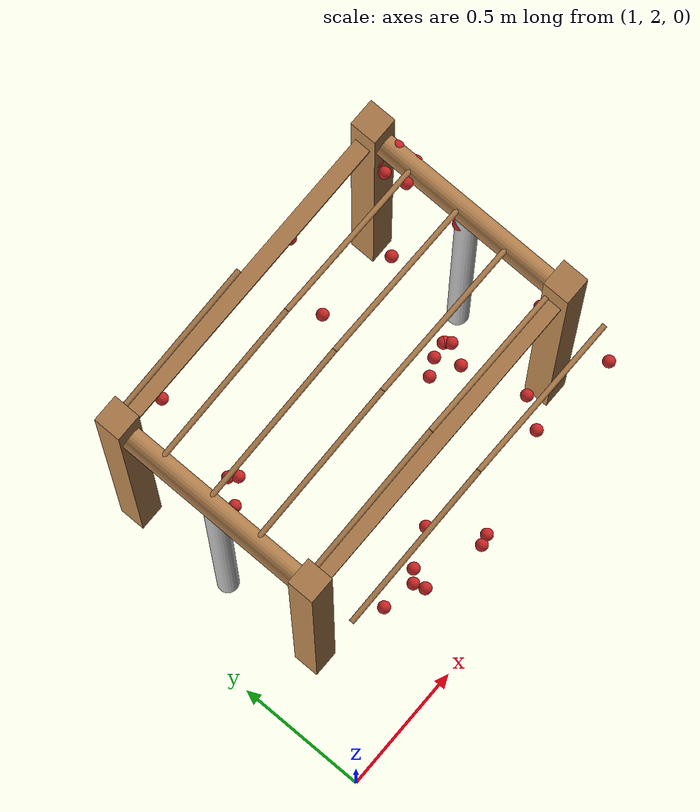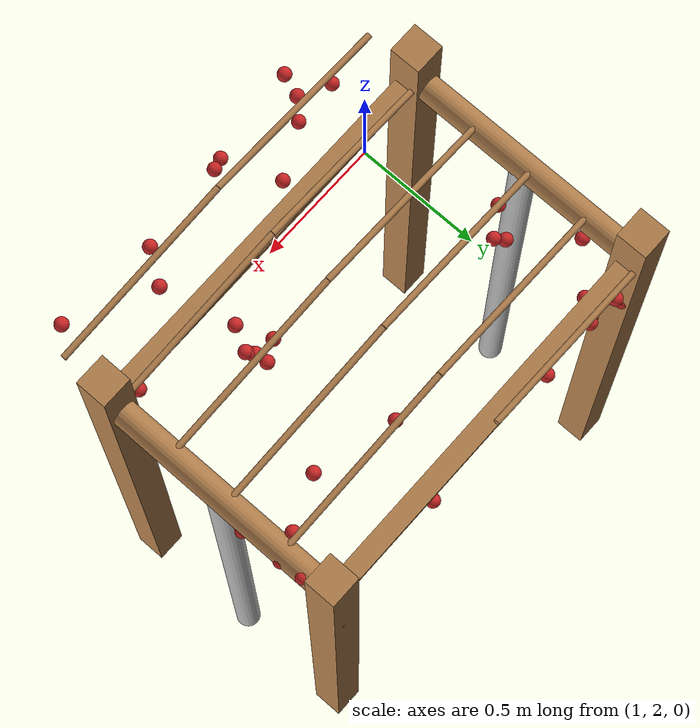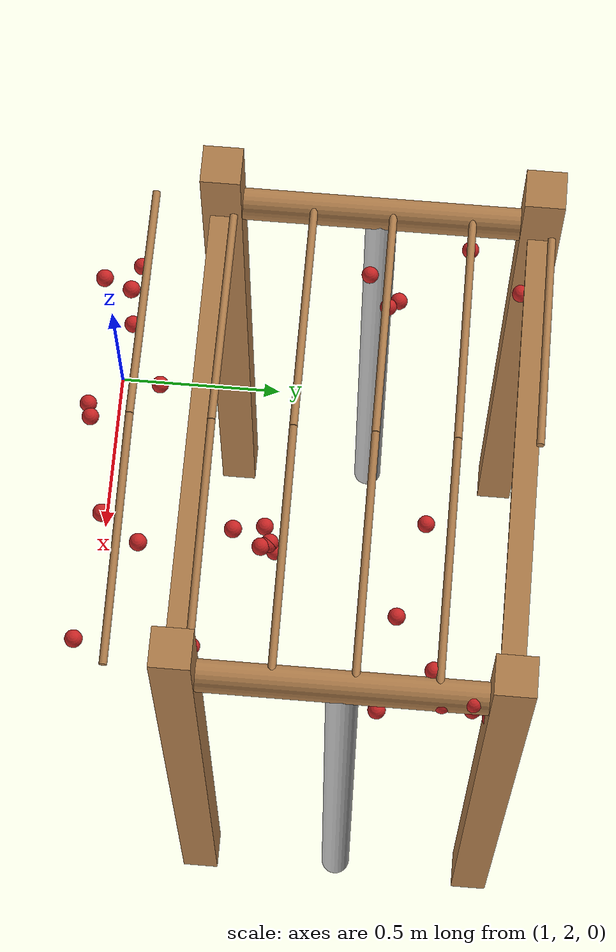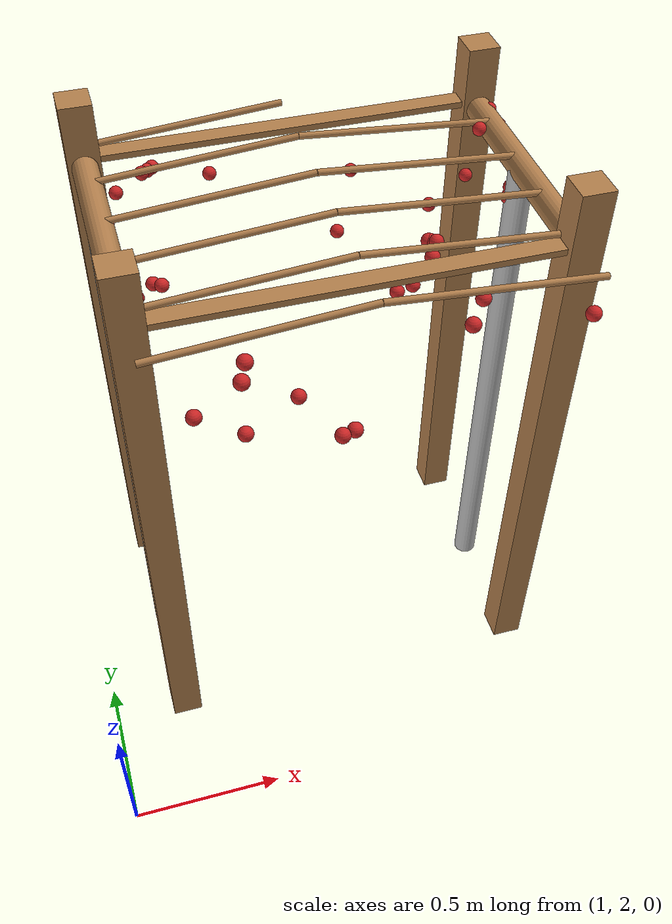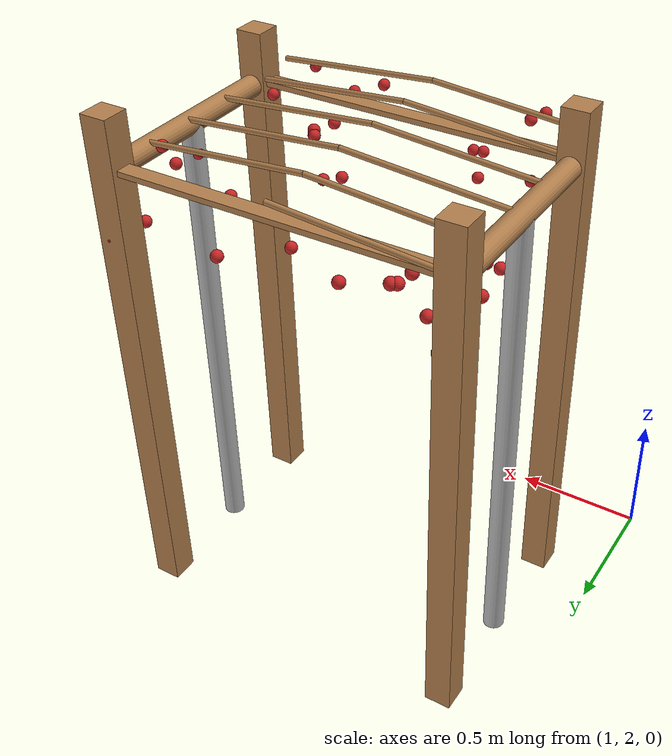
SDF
<sdf version="1.4">
 <model name="pergola">
  <include><name>post_10</name><pose>1.25 2.4000000000000004 0 0 0 0</pose><uri>model://post</uri></include>
  <include><name>post_11</name><pose>1.25 3.2 0 0 0 0</pose><uri>model://post</uri></include>
  <include><name>post_17</name><pose>2.5 2.4000000000000004 0 0 0 0</pose><uri>model://post</uri></include>
  <include><name>post_18</name><pose>2.5 3.2 0 0 0 0</pose><uri>model://post</uri></include>
  <link name="beam_10">
   <pose>1.875 2.4000000000000004 1.81 0 0 0</pose>
   <collision name="collision"><geometry><box><size>1.25 0.06 0.02</size></box></geometry></collision>
   <visual name="visual">
    <geometry><box><size>1.25 0.06 0.02</size></box></geometry>
    <material><script><name>Gazebo/Wood</name></script></material>
   </visual>
   <inertial>
    <mass>5</mass>
    <inertia>
     <ixx>0.0016666666666666668</ixx>
     <ixy>0.0</ixy>
     <ixz>0.0</ixz>
     <iyy>0.6525416666666667</iyy>
     <iyz>0.0</iyz>
     <izz>0.6512083333333333</izz>
    </inertia>
   </inertial>
  </link>
  <link name="beam_11">
   <pose>1.875 3.2 1.81 0 0 0</pose>
   <collision name="collision"><geometry><box><size>1.25 0.06 0.02</size></box></geometry></collision>
   <visual name="visual">
    <geometry><box><size>1.25 0.06 0.02</size></box></geometry>
    <material><script><name>Gazebo/Wood</name></script></material>
   </visual>
   <inertial>
    <mass>5</mass>
    <inertia>
     <ixx>0.0016666666666666668</ixx>
     <ixy>0.0</ixy>
     <ixz>0.0</ixz>
     <iyy>0.6525416666666667</iyy>
     <iyz>0.0</iyz>
     <izz>0.6512083333333333</izz>
    </inertia>
   </inertial>
  </link>
  <include>
   <name>tree_9</name>
   <pose>1.25 2.8000000000000003 0 0 0 0</pose>
   <uri>model://tree_trunk</uri>
  </include>
  <include>
   <name>tree_15</name>
   <pose>2.5 2.8000000000000003 0 0 0 0</pose>
   <uri>model://tree_trunk</uri>
  </include>
  <link name="baseBranch_9">
   <pose>1.25 2.8000000000000003 1.8 1.5707963267948966 0 0</pose>
   <collision name="collision">
    <geometry><cylinder><radius>0.04</radius><length>0.74</length></cylinder></geometry>
   </collision>
   <visual name="visual">
    <geometry><cylinder><radius>0.04</radius><length>0.74</length></cylinder></geometry>
    <material><script><name>Gazebo/WoodFloor</name></script></material>
   </visual>
   <inertial>
    <mass>10</mass>
    <inertia>
     <ixx>0.4603333333333333</ixx>
     <ixy>0.0</ixy>
     <ixz>0.0</ixz>
     <iyy>0.4603333333333333</iyy>
     <iyz>0.0</iyz>
     <izz>0.008</izz>
    </inertia>
   </inertial>
  </link>
  <link name="baseBranch_15">
   <pose>2.5 2.8000000000000003 1.8 1.5707963267948966 0 0</pose>
   <collision name="collision">
    <geometry><cylinder><radius>0.04</radius><length>0.74</length></cylinder></geometry>
   </collision>
   <visual name="visual">
    <geometry><cylinder><radius>0.04</radius><length>0.74</length></cylinder></geometry>
    <material><script><name>Gazebo/WoodFloor</name></script></material>
   </visual>
   <inertial>
    <mass>10</mass>
    <inertia>
     <ixx>0.4603333333333333</ixx>
     <ixy>0.0</ixy>
     <ixz>0.0</ixz>
     <iyy>0.4603333333333333</iyy>
     <iyz>0.0</iyz>
     <izz>0.008</izz>
    </inertia>
   </inertial>
  </link>
  <link name="vine_70">
   <pose>1.5625 2.23 1.85 0 1.4909663410826592 0</pose>
   <collision name="collision">
    <geometry><cylinder><radius>0.01</radius><length>0.6269968101992226</length></cylinder></geometry>
   </collision>
   <visual name="visual">
    <geometry><cylinder><radius>0.01</radius><length>0.6269968101992226</length></cylinder></geometry>
    <material><script><name>Gazebo/WoodFloor</name></script></material>
   </visual>
   <inertial>
    <mass>5</mass>
    <inertia>
     <ixx>0.1639270833333333</ixx>
     <ixy>0.0</ixy>
     <ixz>0.0</ixz>
     <iyy>0.1639270833333333</iyy>
     <iyz>0.0</iyz>
     <izz>0.00025</izz>
    </inertia>
   </inertial>
  </link>
  <link name="vine_71">
   <pose>2.1875 2.23 1.85 0 -1.4909663410826592 0</pose>
   <collision name="collision">
    <geometry><cylinder><radius>0.01</radius><length>0.6269968101992226</length></cylinder></geometry>
   </collision>
   <visual name="visual">
    <geometry><cylinder><radius>0.01</radius><length>0.6269968101992226</length></cylinder></geometry>
    <material><script><name>Gazebo/WoodFloor</name></script></material>
   </visual>
   <inertial>
    <mass>5</mass>
    <inertia>
     <ixx>0.1639270833333333</ixx>
     <ixy>0.0</ixy>
     <ixz>0.0</ixz>
     <iyy>0.1639270833333333</iyy>
     <iyz>0.0</iyz>
     <izz>0.00025</izz>
    </inertia>
   </inertial>
  </link>
  <link name="vine_72">
   <pose>1.5625 2.43 1.85 0 1.4909663410826592 0</pose>
   <collision name="collision">
    <geometry><cylinder><radius>0.01</radius><length>0.6269968101992226</length></cylinder></geometry>
   </collision>
   <visual name="visual">
    <geometry><cylinder><radius>0.01</radius><length>0.6269968101992226</length></cylinder></geometry>
    <material><script><name>Gazebo/WoodFloor</name></script></material>
   </visual>
   <inertial>
    <mass>5</mass>
    <inertia>
     <ixx>0.1639270833333333</ixx>
     <ixy>0.0</ixy>
     <ixz>0.0</ixz>
     <iyy>0.1639270833333333</iyy>
     <iyz>0.0</iyz>
     <izz>0.00025</izz>
    </inertia>
   </inertial>
  </link>
  <link name="vine_73">
   <pose>2.1875 2.43 1.85 0 -1.4909663410826592 0</pose>
   <collision name="collision">
    <geometry><cylinder><radius>0.01</radius><length>0.6269968101992226</length></cylinder></geometry>
   </collision>
   <visual name="visual">
    <geometry><cylinder><radius>0.01</radius><length>0.6269968101992226</length></cylinder></geometry>
    <material><script><name>Gazebo/WoodFloor</name></script></material>
   </visual>
   <inertial>
    <mass>5</mass>
    <inertia>
     <ixx>0.1639270833333333</ixx>
     <ixy>0.0</ixy>
     <ixz>0.0</ixz>
     <iyy>0.1639270833333333</iyy>
     <iyz>0.0</iyz>
     <izz>0.00025</izz>
    </inertia>
   </inertial>
  </link>
  <link name="vine_74">
   <pose>1.5625 2.63 1.85 0 1.4909663410826592 0</pose>
   <collision name="collision">
    <geometry><cylinder><radius>0.01</radius><length>0.6269968101992226</length></cylinder></geometry>
   </collision>
   <visual name="visual">
    <geometry><cylinder><radius>0.01</radius><length>0.6269968101992226</length></cylinder></geometry>
    <material><script><name>Gazebo/WoodFloor</name></script></material>
   </visual>
   <inertial>
    <mass>5</mass>
    <inertia>
     <ixx>0.1639270833333333</ixx>
     <ixy>0.0</ixy>
     <ixz>0.0</ixz>
     <iyy>0.1639270833333333</iyy>
     <iyz>0.0</iyz>
     <izz>0.00025</izz>
    </inertia>
   </inertial>
  </link>
  <link name="vine_75">
   <pose>2.1875 2.63 1.85 0 -1.4909663410826592 0</pose>
   <collision name="collision">
    <geometry><cylinder><radius>0.01</radius><length>0.6269968101992226</length></cylinder></geometry>
   </collision>
   <visual name="visual">
    <geometry><cylinder><radius>0.01</radius><length>0.6269968101992226</length></cylinder></geometry>
    <material><script><name>Gazebo/WoodFloor</name></script></material>
   </visual>
   <inertial>
    <mass>5</mass>
    <inertia>
     <ixx>0.1639270833333333</ixx>
     <ixy>0.0</ixy>
     <ixz>0.0</ixz>
     <iyy>0.1639270833333333</iyy>
     <iyz>0.0</iyz>
     <izz>0.00025</izz>
    </inertia>
   </inertial>
  </link>
  <link name="vine_76">
   <pose>1.5625 2.83 1.85 0 1.4909663410826592 0</pose>
   <collision name="collision">
    <geometry><cylinder><radius>0.01</radius><length>0.6269968101992226</length></cylinder></geometry>
   </collision>
   <visual name="visual">
    <geometry><cylinder><radius>0.01</radius><length>0.6269968101992226</length></cylinder></geometry>
    <material><script><name>Gazebo/WoodFloor</name></script></material>
   </visual>
   <inertial>
    <mass>5</mass>
    <inertia>
     <ixx>0.1639270833333333</ixx>
     <ixy>0.0</ixy>
     <ixz>0.0</ixz>
     <iyy>0.1639270833333333</iyy>
     <iyz>0.0</iyz>
     <izz>0.00025</izz>
    </inertia>
   </inertial>
  </link>
  <link name="vine_77">
   <pose>2.1875 2.83 1.85 0 -1.4909663410826592 0</pose>
   <collision name="collision">
    <geometry><cylinder><radius>0.01</radius><length>0.6269968101992226</length></cylinder></geometry>
   </collision>
   <visual name="visual">
    <geometry><cylinder><radius>0.01</radius><length>0.6269968101992226</length></cylinder></geometry>
    <material><script><name>Gazebo/WoodFloor</name></script></material>
   </visual>
   <inertial>
    <mass>5</mass>
    <inertia>
     <ixx>0.1639270833333333</ixx>
     <ixy>0.0</ixy>
     <ixz>0.0</ixz>
     <iyy>0.1639270833333333</iyy>
     <iyz>0.0</iyz>
     <izz>0.00025</izz>
    </inertia>
   </inertial>
  </link>
  <link name="vine_78">
   <pose>1.5625 3.03 1.85 0 1.4909663410826592 0</pose>
   <collision name="collision">
    <geometry><cylinder><radius>0.01</radius><length>0.6269968101992226</length></cylinder></geometry>
   </collision>
   <visual name="visual">
    <geometry><cylinder><radius>0.01</radius><length>0.6269968101992226</length></cylinder></geometry>
    <material><script><name>Gazebo/WoodFloor</name></script></material>
   </visual>
   <inertial>
    <mass>5</mass>
    <inertia>
     <ixx>0.1639270833333333</ixx>
     <ixy>0.0</ixy>
     <ixz>0.0</ixz>
     <iyy>0.1639270833333333</iyy>
     <iyz>0.0</iyz>
     <izz>0.00025</izz>
    </inertia>
   </inertial>
  </link>
  <link name="vine_79">
   <pose>2.1875 3.03 1.85 0 -1.4909663410826592 0</pose>
   <collision name="collision">
    <geometry><cylinder><radius>0.01</radius><length>0.6269968101992226</length></cylinder></geometry>
   </collision>
   <visual name="visual">
    <geometry><cylinder><radius>0.01</radius><length>0.6269968101992226</length></cylinder></geometry>
    <material><script><name>Gazebo/WoodFloor</name></script></material>
   </visual>
   <inertial>
    <mass>5</mass>
    <inertia>
     <ixx>0.1639270833333333</ixx>
     <ixy>0.0</ixy>
     <ixz>0.0</ixz>
     <iyy>0.1639270833333333</iyy>
     <iyz>0.0</iyz>
     <izz>0.00025</izz>
    </inertia>
   </inertial>
  </link>
  <link name="vine_80">
   <pose>1.5625 3.23 1.85 0 1.4909663410826592 0</pose>
   <collision name="collision">
    <geometry><cylinder><radius>0.01</radius><length>0.6269968101992226</length></cylinder></geometry>
   </collision>
   <visual name="visual">
    <geometry><cylinder><radius>0.01</radius><length>0.6269968101992226</length></cylinder></geometry>
    <material><script><name>Gazebo/WoodFloor</name></script></material>
   </visual>
   <inertial>
    <mass>5</mass>
    <inertia>
     <ixx>0.1639270833333333</ixx>
     <ixy>0.0</ixy>
     <ixz>0.0</ixz>
     <iyy>0.1639270833333333</iyy>
     <iyz>0.0</iyz>
     <izz>0.00025</izz>
    </inertia>
   </inertial>
  </link>
  <link name="fruit_1">
   <pose>2.4274751478928813 2.1480579953781347 1.7793262980542583 0 0 0</pose>
   <collision name="fruit_collision_1"><geometry><sphere><radius>0.022</radius></sphere></geometry></collision>
   <visual name="visual">
    <geometry><sphere><radius>0.022</radius></sphere></geometry>
    <material><script><name>Gazebo/Red</name></script></material>
   </visual>
   <inertial>
    <mass>0.05</mass>
    <inertia>
     <ixx>9.679999999999999e-06</ixx>
     <ixy>0.0</ixy>
     <ixz>0.0</ixz>
     <iyy>9.679999999999999e-06</iyy>
     <iyz>0.0</iyz>
     <izz>9.679999999999999e-06</izz>
    </inertia>
   </inertial>
   <sensor name="fruit_contact_1" type="contact">
    <plugin name="contact_plugin_1" filename="libcontact_plugin.so"/>
    <contact><collision>fruit_collision_1</collision><topic>fruit_contact_topic_1</topic></contact>
   </sensor>
  </link>
  <link name="fruit_43">
   <pose>1.4993064853618758 2.1803682956293535 1.5610665140490019 0 0 0</pose>
   <collision name="fruit_collision_43"><geometry><sphere><radius>0.022</radius></sphere></geometry></collision>
   <visual name="visual">
    <geometry><sphere><radius>0.022</radius></sphere></geometry>
    <material><script><name>Gazebo/Red</name></script></material>
   </visual>
   <inertial>
    <mass>0.05</mass>
    <inertia>
     <ixx>9.679999999999999e-06</ixx>
     <ixy>0.0</ixy>
     <ixz>0.0</ixz>
     <iyy>9.679999999999999e-06</iyy>
     <iyz>0.0</iyz>
     <izz>9.679999999999999e-06</izz>
    </inertia>
   </inertial>
   <sensor name="fruit_contact_43" type="contact">
    <plugin name="contact_plugin_43" filename="libcontact_plugin.so"/>
    <contact><collision>fruit_collision_43</collision><topic>fruit_contact_topic_43</topic></contact>
   </sensor>
  </link>
  <link name="fruit_58">
   <pose>2.473344468427292 2.8125301566092666 1.6951226149741345 0 0 0</pose>
   <collision name="fruit_collision_58"><geometry><sphere><radius>0.022</radius></sphere></geometry></collision>
   <visual name="visual">
    <geometry><sphere><radius>0.022</radius></sphere></geometry>
    <material><script><name>Gazebo/Red</name></script></material>
   </visual>
   <inertial>
    <mass>0.05</mass>
    <inertia>
     <ixx>9.679999999999999e-06</ixx>
     <ixy>0.0</ixy>
     <ixz>0.0</ixz>
     <iyy>9.679999999999999e-06</iyy>
     <iyz>0.0</iyz>
     <izz>9.679999999999999e-06</izz>
    </inertia>
   </inertial>
   <sensor name="fruit_contact_58" type="contact">
    <plugin name="contact_plugin_58" filename="libcontact_plugin.so"/>
    <contact><collision>fruit_collision_58</collision><topic>fruit_contact_topic_58</topic></contact>
   </sensor>
  </link>
  <link name="fruit_66">
   <pose>2.4471947535418987 3.013175742300873 1.8152338183604946 0 0 0</pose>
   <collision name="fruit_collision_66"><geometry><sphere><radius>0.022</radius></sphere></geometry></collision>
   <visual name="visual">
    <geometry><sphere><radius>0.022</radius></sphere></geometry>
    <material><script><name>Gazebo/Red</name></script></material>
   </visual>
   <inertial>
    <mass>0.05</mass>
    <inertia>
     <ixx>9.679999999999999e-06</ixx>
     <ixy>0.0</ixy>
     <ixz>0.0</ixz>
     <iyy>9.679999999999999e-06</iyy>
     <iyz>0.0</iyz>
     <izz>9.679999999999999e-06</izz>
    </inertia>
   </inertial>
   <sensor name="fruit_contact_66" type="contact">
    <plugin name="contact_plugin_66" filename="libcontact_plugin.so"/>
    <contact><collision>fruit_collision_66</collision><topic>fruit_contact_topic_66</topic></contact>
   </sensor>
  </link>
  <link name="fruit_71">
   <pose>2.422530429110237 2.430249512333635 1.7763367892817123 0 0 0</pose>
   <collision name="fruit_collision_71"><geometry><sphere><radius>0.022</radius></sphere></geometry></collision>
   <visual name="visual">
    <geometry><sphere><radius>0.022</radius></sphere></geometry>
    <material><script><name>Gazebo/Red</name></script></material>
   </visual>
   <inertial>
    <mass>0.05</mass>
    <inertia>
     <ixx>9.679999999999999e-06</ixx>
     <ixy>0.0</ixy>
     <ixz>0.0</ixz>
     <iyy>9.679999999999999e-06</iyy>
     <iyz>0.0</iyz>
     <izz>9.679999999999999e-06</izz>
    </inertia>
   </inertial>
   <sensor name="fruit_contact_71" type="contact">
    <plugin name="contact_plugin_71" filename="libcontact_plugin.so"/>
    <contact><collision>fruit_collision_71</collision><topic>fruit_contact_topic_71</topic></contact>
   </sensor>
  </link>
  <link name="fruit_78">
   <pose>1.48654787974668 2.1229078217808426 1.8013129065783586 0 0 0</pose>
   <collision name="fruit_collision_78"><geometry><sphere><radius>0.022</radius></sphere></geometry></collision>
   <visual name="visual">
    <geometry><sphere><radius>0.022</radius></sphere></geometry>
    <material><script><name>Gazebo/Red</name></script></material>
   </visual>
   <inertial>
    <mass>0.05</mass>
    <inertia>
     <ixx>9.679999999999999e-06</ixx>
     <ixy>0.0</ixy>
     <ixz>0.0</ixz>
     <iyy>9.679999999999999e-06</iyy>
     <iyz>0.0</iyz>
     <izz>9.679999999999999e-06</izz>
    </inertia>
   </inertial>
   <sensor name="fruit_contact_78" type="contact">
    <plugin name="contact_plugin_78" filename="libcontact_plugin.so"/>
    <contact><collision>fruit_collision_78</collision><topic>fruit_contact_topic_78</topic></contact>
   </sensor>
  </link>
  <link name="fruit_88">
   <pose>2.4812493503723925 3.1660824327577735 1.5698715141636896 0 0 0</pose>
   <collision name="fruit_collision_88"><geometry><sphere><radius>0.022</radius></sphere></geometry></collision>
   <visual name="visual">
    <geometry><sphere><radius>0.022</radius></sphere></geometry>
    <material><script><name>Gazebo/Red</name></script></material>
   </visual>
   <inertial>
    <mass>0.05</mass>
    <inertia>
     <ixx>9.679999999999999e-06</ixx>
     <ixy>0.0</ixy>
     <ixz>0.0</ixz>
     <iyy>9.679999999999999e-06</iyy>
     <iyz>0.0</iyz>
     <izz>9.679999999999999e-06</izz>
    </inertia>
   </inertial>
   <sensor name="fruit_contact_88" type="contact">
    <plugin name="contact_plugin_88" filename="libcontact_plugin.so"/>
    <contact><collision>fruit_collision_88</collision><topic>fruit_contact_topic_88</topic></contact>
   </sensor>
  </link>
  <link name="fruit_105">
   <pose>2.11316316700231 2.502274230455751 1.7681579666368437 0 0 0</pose>
   <collision name="fruit_collision_105"><geometry><sphere><radius>0.022</radius></sphere></geometry></collision>
   <visual name="visual">
    <geometry><sphere><radius>0.022</radius></sphere></geometry>
    <material><script><name>Gazebo/Red</name></script></material>
   </visual>
   <inertial>
    <mass>0.05</mass>
    <inertia>
     <ixx>9.679999999999999e-06</ixx>
     <ixy>0.0</ixy>
     <ixz>0.0</ixz>
     <iyy>9.679999999999999e-06</iyy>
     <iyz>0.0</iyz>
     <izz>9.679999999999999e-06</izz>
    </inertia>
   </inertial>
   <sensor name="fruit_contact_105" type="contact">
    <plugin name="contact_plugin_105" filename="libcontact_plugin.so"/>
    <contact><collision>fruit_collision_105</collision><topic>fruit_contact_topic_105</topic></contact>
   </sensor>
  </link>
  <link name="fruit_120">
   <pose>1.3334075690535072 3.219318539136242 1.6539505342599943 0 0 0</pose>
   <collision name="fruit_collision_120"><geometry><sphere><radius>0.022</radius></sphere></geometry></collision>
   <visual name="visual">
    <geometry><sphere><radius>0.022</radius></sphere></geometry>
    <material><script><name>Gazebo/Red</name></script></material>
   </visual>
   <inertial>
    <mass>0.05</mass>
    <inertia>
     <ixx>9.679999999999999e-06</ixx>
     <ixy>0.0</ixy>
     <ixz>0.0</ixz>
     <iyy>9.679999999999999e-06</iyy>
     <iyz>0.0</iyz>
     <izz>9.679999999999999e-06</izz>
    </inertia>
   </inertial>
   <sensor name="fruit_contact_120" type="contact">
    <plugin name="contact_plugin_120" filename="libcontact_plugin.so"/>
    <contact><collision>fruit_collision_120</collision><topic>fruit_contact_topic_120</topic></contact>
   </sensor>
  </link>
  <link name="fruit_130">
   <pose>2.042324814095389 2.5715156537523525 1.6080661146447481 0 0 0</pose>
   <collision name="fruit_collision_130"><geometry><sphere><radius>0.022</radius></sphere></geometry></collision>
   <visual name="visual">
    <geometry><sphere><radius>0.022</radius></sphere></geometry>
    <material><script><name>Gazebo/Red</name></script></material>
   </visual>
   <inertial>
    <mass>0.05</mass>
    <inertia>
     <ixx>9.679999999999999e-06</ixx>
     <ixy>0.0</ixy>
     <ixz>0.0</ixz>
     <iyy>9.679999999999999e-06</iyy>
     <iyz>0.0</iyz>
     <izz>9.679999999999999e-06</izz>
    </inertia>
   </inertial>
   <sensor name="fruit_contact_130" type="contact">
    <plugin name="contact_plugin_130" filename="libcontact_plugin.so"/>
    <contact><collision>fruit_collision_130</collision><topic>fruit_contact_topic_130</topic></contact>
   </sensor>
  </link>
  <link name="fruit_150">
   <pose>2.105854420899652 2.1810453787810964 1.7895078811856475 0 0 0</pose>
   <collision name="fruit_collision_150"><geometry><sphere><radius>0.022</radius></sphere></geometry></collision>
   <visual name="visual">
    <geometry><sphere><radius>0.022</radius></sphere></geometry>
    <material><script><name>Gazebo/Red</name></script></material>
   </visual>
   <inertial>
    <mass>0.05</mass>
    <inertia>
     <ixx>9.679999999999999e-06</ixx>
     <ixy>0.0</ixy>
     <ixz>0.0</ixz>
     <iyy>9.679999999999999e-06</iyy>
     <iyz>0.0</iyz>
     <izz>9.679999999999999e-06</izz>
    </inertia>
   </inertial>
   <sensor name="fruit_contact_150" type="contact">
    <plugin name="contact_plugin_150" filename="libcontact_plugin.so"/>
    <contact><collision>fruit_collision_150</collision><topic>fruit_contact_topic_150</topic></contact>
   </sensor>
  </link>
  <link name="fruit_207">
   <pose>2.466059688977452 3.1194751574011588 1.5799432937256712 0 0 0</pose>
   <collision name="fruit_collision_207"><geometry><sphere><radius>0.022</radius></sphere></geometry></collision>
   <visual name="visual">
    <geometry><sphere><radius>0.022</radius></sphere></geometry>
    <material><script><name>Gazebo/Red</name></script></material>
   </visual>
   <inertial>
    <mass>0.05</mass>
    <inertia>
     <ixx>9.679999999999999e-06</ixx>
     <ixy>0.0</ixy>
     <ixz>0.0</ixz>
     <iyy>9.679999999999999e-06</iyy>
     <iyz>0.0</iyz>
     <izz>9.679999999999999e-06</izz>
    </inertia>
   </inertial>
   <sensor name="fruit_contact_207" type="contact">
    <plugin name="contact_plugin_207" filename="libcontact_plugin.so"/>
    <contact><collision>fruit_collision_207</collision><topic>fruit_contact_topic_207</topic></contact>
   </sensor>
  </link>
  <link name="fruit_209">
   <pose>2.5198352014017216 3.112532501464855 1.8161062185743204 0 0 0</pose>
   <collision name="fruit_collision_209"><geometry><sphere><radius>0.022</radius></sphere></geometry></collision>
   <visual name="visual">
    <geometry><sphere><radius>0.022</radius></sphere></geometry>
    <material><script><name>Gazebo/Red</name></script></material>
   </visual>
   <inertial>
    <mass>0.05</mass>
    <inertia>
     <ixx>9.679999999999999e-06</ixx>
     <ixy>0.0</ixy>
     <ixz>0.0</ixz>
     <iyy>9.679999999999999e-06</iyy>
     <iyz>0.0</iyz>
     <izz>9.679999999999999e-06</izz>
    </inertia>
   </inertial>
   <sensor name="fruit_contact_209" type="contact">
    <plugin name="contact_plugin_209" filename="libcontact_plugin.so"/>
    <contact><collision>fruit_collision_209</collision><topic>fruit_contact_topic_209</topic></contact>
   </sensor>
  </link>
  <link name="fruit_212">
   <pose>1.3713500908074616 2.196286396734373 1.6411347740742925 0 0 0</pose>
   <collision name="fruit_collision_212"><geometry><sphere><radius>0.022</radius></sphere></geometry></collision>
   <visual name="visual">
    <geometry><sphere><radius>0.022</radius></sphere></geometry>
    <material><script><name>Gazebo/Red</name></script></material>
   </visual>
   <inertial>
    <mass>0.05</mass>
    <inertia>
     <ixx>9.679999999999999e-06</ixx>
     <ixy>0.0</ixy>
     <ixz>0.0</ixz>
     <iyy>9.679999999999999e-06</iyy>
     <iyz>0.0</iyz>
     <izz>9.679999999999999e-06</izz>
    </inertia>
   </inertial>
   <sensor name="fruit_contact_212" type="contact">
    <plugin name="contact_plugin_212" filename="libcontact_plugin.so"/>
    <contact><collision>fruit_collision_212</collision><topic>fruit_contact_topic_212</topic></contact>
   </sensor>
  </link>
  <link name="fruit_218">
   <pose>1.6655234544486863 2.2684718252210034 1.5697744001766194 0 0 0</pose>
   <collision name="fruit_collision_218"><geometry><sphere><radius>0.022</radius></sphere></geometry></collision>
   <visual name="visual">
    <geometry><sphere><radius>0.022</radius></sphere></geometry>
    <material><script><name>Gazebo/Red</name></script></material>
   </visual>
   <inertial>
    <mass>0.05</mass>
    <inertia>
     <ixx>9.679999999999999e-06</ixx>
     <ixy>0.0</ixy>
     <ixz>0.0</ixz>
     <iyy>9.679999999999999e-06</iyy>
     <iyz>0.0</iyz>
     <izz>9.679999999999999e-06</izz>
    </inertia>
   </inertial>
   <sensor name="fruit_contact_218" type="contact">
    <plugin name="contact_plugin_218" filename="libcontact_plugin.so"/>
    <contact><collision>fruit_collision_218</collision><topic>fruit_contact_topic_218</topic></contact>
   </sensor>
  </link>
  <link name="fruit_225">
   <pose>1.9817147713593026 2.9734227179648807 1.5523238449756278 0 0 0</pose>
   <collision name="fruit_collision_225"><geometry><sphere><radius>0.022</radius></sphere></geometry></collision>
   <visual name="visual">
    <geometry><sphere><radius>0.022</radius></sphere></geometry>
    <material><script><name>Gazebo/Red</name></script></material>
   </visual>
   <inertial>
    <mass>0.05</mass>
    <inertia>
     <ixx>9.679999999999999e-06</ixx>
     <ixy>0.0</ixy>
     <ixz>0.0</ixz>
     <iyy>9.679999999999999e-06</iyy>
     <iyz>0.0</iyz>
     <izz>9.679999999999999e-06</izz>
    </inertia>
   </inertial>
   <sensor name="fruit_contact_225" type="contact">
    <plugin name="contact_plugin_225" filename="libcontact_plugin.so"/>
    <contact><collision>fruit_collision_225</collision><topic>fruit_contact_topic_225</topic></contact>
   </sensor>
  </link>
  <link name="fruit_242">
   <pose>1.4152717825054855 3.165379608852323 1.7442572683707223 0 0 0</pose>
   <collision name="fruit_collision_242"><geometry><sphere><radius>0.022</radius></sphere></geometry></collision>
   <visual name="visual">
    <geometry><sphere><radius>0.022</radius></sphere></geometry>
    <material><script><name>Gazebo/Red</name></script></material>
   </visual>
   <inertial>
    <mass>0.05</mass>
    <inertia>
     <ixx>9.679999999999999e-06</ixx>
     <ixy>0.0</ixy>
     <ixz>0.0</ixz>
     <iyy>9.679999999999999e-06</iyy>
     <iyz>0.0</iyz>
     <izz>9.679999999999999e-06</izz>
    </inertia>
   </inertial>
   <sensor name="fruit_contact_242" type="contact">
    <plugin name="contact_plugin_242" filename="libcontact_plugin.so"/>
    <contact><collision>fruit_collision_242</collision><topic>fruit_contact_topic_242</topic></contact>
   </sensor>
  </link>
  <link name="fruit_252">
   <pose>2.2604676385038367 2.9165206328202773 1.6375280273319908 0 0 0</pose>
   <collision name="fruit_collision_252"><geometry><sphere><radius>0.022</radius></sphere></geometry></collision>
   <visual name="visual">
    <geometry><sphere><radius>0.022</radius></sphere></geometry>
    <material><script><name>Gazebo/Red</name></script></material>
   </visual>
   <inertial>
    <mass>0.05</mass>
    <inertia>
     <ixx>9.679999999999999e-06</ixx>
     <ixy>0.0</ixy>
     <ixz>0.0</ixz>
     <iyy>9.679999999999999e-06</iyy>
     <iyz>0.0</iyz>
     <izz>9.679999999999999e-06</izz>
    </inertia>
   </inertial>
   <sensor name="fruit_contact_252" type="contact">
    <plugin name="contact_plugin_252" filename="libcontact_plugin.so"/>
    <contact><collision>fruit_collision_252</collision><topic>fruit_contact_topic_252</topic></contact>
   </sensor>
  </link>
  <link name="fruit_253">
   <pose>1.3176975767766321 2.780434869978868 1.580812586190491 0 0 0</pose>
   <collision name="fruit_collision_253"><geometry><sphere><radius>0.022</radius></sphere></geometry></collision>
   <visual name="visual">
    <geometry><sphere><radius>0.022</radius></sphere></geometry>
    <material><script><name>Gazebo/Red</name></script></material>
   </visual>
   <inertial>
    <mass>0.05</mass>
    <inertia>
     <ixx>9.679999999999999e-06</ixx>
     <ixy>0.0</ixy>
     <ixz>0.0</ixz>
     <iyy>9.679999999999999e-06</iyy>
     <iyz>0.0</iyz>
     <izz>9.679999999999999e-06</izz>
    </inertia>
   </inertial>
   <sensor name="fruit_contact_253" type="contact">
    <plugin name="contact_plugin_253" filename="libcontact_plugin.so"/>
    <contact><collision>fruit_collision_253</collision><topic>fruit_contact_topic_253</topic></contact>
   </sensor>
  </link>
  <link name="fruit_289">
   <pose>2.096701930129968 3.209073347516803 1.6080741526750344 0 0 0</pose>
   <collision name="fruit_collision_289"><geometry><sphere><radius>0.022</radius></sphere></geometry></collision>
   <visual name="visual">
    <geometry><sphere><radius>0.022</radius></sphere></geometry>
    <material><script><name>Gazebo/Red</name></script></material>
   </visual>
   <inertial>
    <mass>0.05</mass>
    <inertia>
     <ixx>9.679999999999999e-06</ixx>
     <ixy>0.0</ixy>
     <ixz>0.0</ixz>
     <iyy>9.679999999999999e-06</iyy>
     <iyz>0.0</iyz>
     <izz>9.679999999999999e-06</izz>
    </inertia>
   </inertial>
   <sensor name="fruit_contact_289" type="contact">
    <plugin name="contact_plugin_289" filename="libcontact_plugin.so"/>
    <contact><collision>fruit_collision_289</collision><topic>fruit_contact_topic_289</topic></contact>
   </sensor>
  </link>
  <link name="fruit_292">
   <pose>1.293262121268593 3.2230481812775813 1.5411432086198005 0 0 0</pose>
   <collision name="fruit_collision_292"><geometry><sphere><radius>0.022</radius></sphere></geometry></collision>
   <visual name="visual">
    <geometry><sphere><radius>0.022</radius></sphere></geometry>
    <material><script><name>Gazebo/Red</name></script></material>
   </visual>
   <inertial>
    <mass>0.05</mass>
    <inertia>
     <ixx>9.679999999999999e-06</ixx>
     <ixy>0.0</ixy>
     <ixz>0.0</ixz>
     <iyy>9.679999999999999e-06</iyy>
     <iyz>0.0</iyz>
     <izz>9.679999999999999e-06</izz>
    </inertia>
   </inertial>
   <sensor name="fruit_contact_292" type="contact">
    <plugin name="contact_plugin_292" filename="libcontact_plugin.so"/>
    <contact><collision>fruit_collision_292</collision><topic>fruit_contact_topic_292</topic></contact>
   </sensor>
  </link>
  <link name="fruit_341">
   <pose>1.63240851302335 3.2203674642149887 1.6710534261311474 0 0 0</pose>
   <collision name="fruit_collision_341"><geometry><sphere><radius>0.022</radius></sphere></geometry></collision>
   <visual name="visual">
    <geometry><sphere><radius>0.022</radius></sphere></geometry>
    <material><script><name>Gazebo/Red</name></script></material>
   </visual>
   <inertial>
    <mass>0.05</mass>
    <inertia>
     <ixx>9.679999999999999e-06</ixx>
     <ixy>0.0</ixy>
     <ixz>0.0</ixz>
     <iyy>9.679999999999999e-06</iyy>
     <iyz>0.0</iyz>
     <izz>9.679999999999999e-06</izz>
    </inertia>
   </inertial>
   <sensor name="fruit_contact_341" type="contact">
    <plugin name="contact_plugin_341" filename="libcontact_plugin.so"/>
    <contact><collision>fruit_collision_341</collision><topic>fruit_contact_topic_341</topic></contact>
   </sensor>
  </link>
  <link name="fruit_360">
   <pose>2.135479844255832 2.593909984784351 1.7534511150863492 0 0 0</pose>
   <collision name="fruit_collision_360"><geometry><sphere><radius>0.022</radius></sphere></geometry></collision>
   <visual name="visual">
    <geometry><sphere><radius>0.022</radius></sphere></geometry>
    <material><script><name>Gazebo/Red</name></script></material>
   </visual>
   <inertial>
    <mass>0.05</mass>
    <inertia>
     <ixx>9.679999999999999e-06</ixx>
     <ixy>0.0</ixy>
     <ixz>0.0</ixz>
     <iyy>9.679999999999999e-06</iyy>
     <iyz>0.0</iyz>
     <izz>9.679999999999999e-06</izz>
    </inertia>
   </inertial>
   <sensor name="fruit_contact_360" type="contact">
    <plugin name="contact_plugin_360" filename="libcontact_plugin.so"/>
    <contact><collision>fruit_collision_360</collision><topic>fruit_contact_topic_360</topic></contact>
   </sensor>
  </link>
  <link name="fruit_374">
   <pose>1.2337903655957734 3.061173017765536 1.7813572111639244 0 0 0</pose>
   <collision name="fruit_collision_374"><geometry><sphere><radius>0.022</radius></sphere></geometry></collision>
   <visual name="visual">
    <geometry><sphere><radius>0.022</radius></sphere></geometry>
    <material><script><name>Gazebo/Red</name></script></material>
   </visual>
   <inertial>
    <mass>0.05</mass>
    <inertia>
     <ixx>9.679999999999999e-06</ixx>
     <ixy>0.0</ixy>
     <ixz>0.0</ixz>
     <iyy>9.679999999999999e-06</iyy>
     <iyz>0.0</iyz>
     <izz>9.679999999999999e-06</izz>
    </inertia>
   </inertial>
   <sensor name="fruit_contact_374" type="contact">
    <plugin name="contact_plugin_374" filename="libcontact_plugin.so"/>
    <contact><collision>fruit_collision_374</collision><topic>fruit_contact_topic_374</topic></contact>
   </sensor>
  </link>
  <link name="fruit_477">
   <pose>2.5240779199579664 3.0382922702120028 1.8006846641298944 0 0 0</pose>
   <collision name="fruit_collision_477"><geometry><sphere><radius>0.022</radius></sphere></geometry></collision>
   <visual name="visual">
    <geometry><sphere><radius>0.022</radius></sphere></geometry>
    <material><script><name>Gazebo/Red</name></script></material>
   </visual>
   <inertial>
    <mass>0.05</mass>
    <inertia>
     <ixx>9.679999999999999e-06</ixx>
     <ixy>0.0</ixy>
     <ixz>0.0</ixz>
     <iyy>9.679999999999999e-06</iyy>
     <iyz>0.0</iyz>
     <izz>9.679999999999999e-06</izz>
    </inertia>
   </inertial>
   <sensor name="fruit_contact_477" type="contact">
    <plugin name="contact_plugin_477" filename="libcontact_plugin.so"/>
    <contact><collision>fruit_collision_477</collision><topic>fruit_contact_topic_477</topic></contact>
   </sensor>
  </link>
  <link name="fruit_522">
   <pose>1.2577126713252225 3.0732306468510036 1.7799106169589671 0 0 0</pose>
   <collision name="fruit_collision_522"><geometry><sphere><radius>0.022</radius></sphere></geometry></collision>
   <visual name="visual">
    <geometry><sphere><radius>0.022</radius></sphere></geometry>
    <material><script><name>Gazebo/Red</name></script></material>
   </visual>
   <inertial>
    <mass>0.05</mass>
    <inertia>
     <ixx>9.679999999999999e-06</ixx>
     <ixy>0.0</ixy>
     <ixz>0.0</ixz>
     <iyy>9.679999999999999e-06</iyy>
     <iyz>0.0</iyz>
     <izz>9.679999999999999e-06</izz>
    </inertia>
   </inertial>
   <sensor name="fruit_contact_522" type="contact">
    <plugin name="contact_plugin_522" filename="libcontact_plugin.so"/>
    <contact><collision>fruit_collision_522</collision><topic>fruit_contact_topic_522</topic></contact>
   </sensor>
  </link>
  <link name="fruit_530">
   <pose>2.514073711377872 3.2291813170105153 1.5565706885902497 0 0 0</pose>
   <collision name="fruit_collision_530"><geometry><sphere><radius>0.022</radius></sphere></geometry></collision>
   <visual name="visual">
    <geometry><sphere><radius>0.022</radius></sphere></geometry>
    <material><script><name>Gazebo/Red</name></script></material>
   </visual>
   <inertial>
    <mass>0.05</mass>
    <inertia>
     <ixx>9.679999999999999e-06</ixx>
     <ixy>0.0</ixy>
     <ixz>0.0</ixz>
     <iyy>9.679999999999999e-06</iyy>
     <iyz>0.0</iyz>
     <izz>9.679999999999999e-06</izz>
    </inertia>
   </inertial>
   <sensor name="fruit_contact_530" type="contact">
    <plugin name="contact_plugin_530" filename="libcontact_plugin.so"/>
    <contact><collision>fruit_collision_530</collision><topic>fruit_contact_topic_530</topic></contact>
   </sensor>
  </link>
  <link name="fruit_531">
   <pose>1.3996541872463897 2.8344571259827154 1.5695459308704995 0 0 0</pose>
   <collision name="fruit_collision_531"><geometry><sphere><radius>0.022</radius></sphere></geometry></collision>
   <visual name="visual">
    <geometry><sphere><radius>0.022</radius></sphere></geometry>
    <material><script><name>Gazebo/Red</name></script></material>
   </visual>
   <inertial>
    <mass>0.05</mass>
    <inertia>
     <ixx>9.679999999999999e-06</ixx>
     <ixy>0.0</ixy>
     <ixz>0.0</ixz>
     <iyy>9.679999999999999e-06</iyy>
     <iyz>0.0</iyz>
     <izz>9.679999999999999e-06</izz>
    </inertia>
   </inertial>
   <sensor name="fruit_contact_531" type="contact">
    <plugin name="contact_plugin_531" filename="libcontact_plugin.so"/>
    <contact><collision>fruit_collision_531</collision><topic>fruit_contact_topic_531</topic></contact>
   </sensor>
  </link>
  <link name="fruit_550">
   <pose>1.4547431897013035 3.2197927149415384 1.7253030058428334 0 0 0</pose>
   <collision name="fruit_collision_550"><geometry><sphere><radius>0.022</radius></sphere></geometry></collision>
   <visual name="visual">
    <geometry><sphere><radius>0.022</radius></sphere></geometry>
    <material><script><name>Gazebo/Red</name></script></material>
   </visual>
   <inertial>
    <mass>0.05</mass>
    <inertia>
     <ixx>9.679999999999999e-06</ixx>
     <ixy>0.0</ixy>
     <ixz>0.0</ixz>
     <iyy>9.679999999999999e-06</iyy>
     <iyz>0.0</iyz>
     <izz>9.679999999999999e-06</izz>
    </inertia>
   </inertial>
   <sensor name="fruit_contact_550" type="contact">
    <plugin name="contact_plugin_550" filename="libcontact_plugin.so"/>
    <contact><collision>fruit_collision_550</collision><topic>fruit_contact_topic_550</topic></contact>
   </sensor>
  </link>
  <link name="fruit_560">
   <pose>1.4382632812679939 3.208284971415049 1.724244783756208 0 0 0</pose>
   <collision name="fruit_collision_560"><geometry><sphere><radius>0.022</radius></sphere></geometry></collision>
   <visual name="visual">
    <geometry><sphere><radius>0.022</radius></sphere></geometry>
    <material><script><name>Gazebo/Red</name></script></material>
   </visual>
   <inertial>
    <mass>0.05</mass>
    <inertia>
     <ixx>9.679999999999999e-06</ixx>
     <ixy>0.0</ixy>
     <ixz>0.0</ixz>
     <iyy>9.679999999999999e-06</iyy>
     <iyz>0.0</iyz>
     <izz>9.679999999999999e-06</izz>
    </inertia>
   </inertial>
   <sensor name="fruit_contact_560" type="contact">
    <plugin name="contact_plugin_560" filename="libcontact_plugin.so"/>
    <contact><collision>fruit_collision_560</collision><topic>fruit_contact_topic_560</topic></contact>
   </sensor>
  </link>
  <link name="fruit_570">
   <pose>2.1724433145648807 2.277128492322288 1.7852965557582887 0 0 0</pose>
   <collision name="fruit_collision_570"><geometry><sphere><radius>0.022</radius></sphere></geometry></collision>
   <visual name="visual">
    <geometry><sphere><radius>0.022</radius></sphere></geometry>
    <material><script><name>Gazebo/Red</name></script></material>
   </visual>
   <inertial>
    <mass>0.05</mass>
    <inertia>
     <ixx>9.679999999999999e-06</ixx>
     <ixy>0.0</ixy>
     <ixz>0.0</ixz>
     <iyy>9.679999999999999e-06</iyy>
     <iyz>0.0</iyz>
     <izz>9.679999999999999e-06</izz>
    </inertia>
   </inertial>
   <sensor name="fruit_contact_570" type="contact">
    <plugin name="contact_plugin_570" filename="libcontact_plugin.so"/>
    <contact><collision>fruit_collision_570</collision><topic>fruit_contact_topic_570</topic></contact>
   </sensor>
  </link>
  <link name="fruit_604">
   <pose>1.735437263896466 2.0916416395309856 1.5770679858026184 0 0 0</pose>
   <collision name="fruit_collision_604"><geometry><sphere><radius>0.022</radius></sphere></geometry></collision>
   <visual name="visual">
    <geometry><sphere><radius>0.022</radius></sphere></geometry>
    <material><script><name>Gazebo/Red</name></script></material>
   </visual>
   <inertial>
    <mass>0.05</mass>
    <inertia>
     <ixx>9.679999999999999e-06</ixx>
     <ixy>0.0</ixy>
     <ixz>0.0</ixz>
     <iyy>9.679999999999999e-06</iyy>
     <iyz>0.0</iyz>
     <izz>9.679999999999999e-06</izz>
    </inertia>
   </inertial>
   <sensor name="fruit_contact_604" type="contact">
    <plugin name="contact_plugin_604" filename="libcontact_plugin.so"/>
    <contact><collision>fruit_collision_604</collision><topic>fruit_contact_topic_604</topic></contact>
   </sensor>
  </link>
  <link name="fruit_627">
   <pose>2.514257755288843 2.885248457215539 1.676839649047515 0 0 0</pose>
   <collision name="fruit_collision_627"><geometry><sphere><radius>0.022</radius></sphere></geometry></collision>
   <visual name="visual">
    <geometry><sphere><radius>0.022</radius></sphere></geometry>
    <material><script><name>Gazebo/Red</name></script></material>
   </visual>
   <inertial>
    <mass>0.05</mass>
    <inertia>
     <ixx>9.679999999999999e-06</ixx>
     <ixy>0.0</ixy>
     <ixz>0.0</ixz>
     <iyy>9.679999999999999e-06</iyy>
     <iyz>0.0</iyz>
     <izz>9.679999999999999e-06</izz>
    </inertia>
   </inertial>
   <sensor name="fruit_contact_627" type="contact">
    <plugin name="contact_plugin_627" filename="libcontact_plugin.so"/>
    <contact><collision>fruit_collision_627</collision><topic>fruit_contact_topic_627</topic></contact>
   </sensor>
  </link>
  <link name="fruit_634">
   <pose>1.5109368126079596 2.1923947308144456 1.7992941996426295 0 0 0</pose>
   <collision name="fruit_collision_634"><geometry><sphere><radius>0.022</radius></sphere></geometry></collision>
   <visual name="visual">
    <geometry><sphere><radius>0.022</radius></sphere></geometry>
    <material><script><name>Gazebo/Red</name></script></material>
   </visual>
   <inertial>
    <mass>0.05</mass>
    <inertia>
     <ixx>9.679999999999999e-06</ixx>
     <ixy>0.0</ixy>
     <ixz>0.0</ixz>
     <iyy>9.679999999999999e-06</iyy>
     <iyz>0.0</iyz>
     <izz>9.679999999999999e-06</izz>
    </inertia>
   </inertial>
   <sensor name="fruit_contact_634" type="contact">
    <plugin name="contact_plugin_634" filename="libcontact_plugin.so"/>
    <contact><collision>fruit_collision_634</collision><topic>fruit_contact_topic_634</topic></contact>
   </sensor>
  </link>
  <link name="fruit_654">
   <pose>2.101549820338774 2.6014109149849682 1.5969228330866856 0 0 0</pose>
   <collision name="fruit_collision_654"><geometry><sphere><radius>0.022</radius></sphere></geometry></collision>
   <visual name="visual">
    <geometry><sphere><radius>0.022</radius></sphere></geometry>
    <material><script><name>Gazebo/Red</name></script></material>
   </visual>
   <inertial>
    <mass>0.05</mass>
    <inertia>
     <ixx>9.679999999999999e-06</ixx>
     <ixy>0.0</ixy>
     <ixz>0.0</ixz>
     <iyy>9.679999999999999e-06</iyy>
     <iyz>0.0</iyz>
     <izz>9.679999999999999e-06</izz>
    </inertia>
   </inertial>
   <sensor name="fruit_contact_654" type="contact">
    <plugin name="contact_plugin_654" filename="libcontact_plugin.so"/>
    <contact><collision>fruit_collision_654</collision><topic>fruit_contact_topic_654</topic></contact>
   </sensor>
  </link>
  <link name="fruit_715">
   <pose>1.2590439971456708 2.6691673905093536 1.805781689756177 0 0 0</pose>
   <collision name="fruit_collision_715"><geometry><sphere><radius>0.022</radius></sphere></geometry></collision>
   <visual name="visual">
    <geometry><sphere><radius>0.022</radius></sphere></geometry>
    <material><script><name>Gazebo/Red</name></script></material>
   </visual>
   <inertial>
    <mass>0.05</mass>
    <inertia>
     <ixx>9.679999999999999e-06</ixx>
     <ixy>0.0</ixy>
     <ixz>0.0</ixz>
     <iyy>9.679999999999999e-06</iyy>
     <iyz>0.0</iyz>
     <izz>9.679999999999999e-06</izz>
    </inertia>
   </inertial>
   <sensor name="fruit_contact_715" type="contact">
    <plugin name="contact_plugin_715" filename="libcontact_plugin.so"/>
    <contact><collision>fruit_collision_715</collision><topic>fruit_contact_topic_715</topic></contact>
   </sensor>
  </link>
  <link name="fruit_727">
   <pose>1.3764693039576594 2.8605313282926264 1.5602049003195628 0 0 0</pose>
   <collision name="fruit_collision_727"><geometry><sphere><radius>0.022</radius></sphere></geometry></collision>
   <visual name="visual">
    <geometry><sphere><radius>0.022</radius></sphere></geometry>
    <material><script><name>Gazebo/Red</name></script></material>
   </visual>
   <inertial>
    <mass>0.05</mass>
    <inertia>
     <ixx>9.679999999999999e-06</ixx>
     <ixy>0.0</ixy>
     <ixz>0.0</ixz>
     <iyy>9.679999999999999e-06</iyy>
     <iyz>0.0</iyz>
     <izz>9.679999999999999e-06</izz>
    </inertia>
   </inertial>
   <sensor name="fruit_contact_727" type="contact">
    <plugin name="contact_plugin_727" filename="libcontact_plugin.so"/>
    <contact><collision>fruit_collision_727</collision><topic>fruit_contact_topic_727</topic></contact>
   </sensor>
  </link>
  <link name="fruit_742">
   <pose>1.2556161926463976 3.034245113535898 1.6433984562056208 0 0 0</pose>
   <collision name="fruit_collision_742"><geometry><sphere><radius>0.022</radius></sphere></geometry></collision>
   <visual name="visual">
    <geometry><sphere><radius>0.022</radius></sphere></geometry>
    <material><script><name>Gazebo/Red</name></script></material>
   </visual>
   <inertial>
    <mass>0.05</mass>
    <inertia>
     <ixx>9.679999999999999e-06</ixx>
     <ixy>0.0</ixy>
     <ixz>0.0</ixz>
     <iyy>9.679999999999999e-06</iyy>
     <iyz>0.0</iyz>
     <izz>9.679999999999999e-06</izz>
    </inertia>
   </inertial>
   <sensor name="fruit_contact_742" type="contact">
    <plugin name="contact_plugin_742" filename="libcontact_plugin.so"/>
    <contact><collision>fruit_collision_742</collision><topic>fruit_contact_topic_742</topic></contact>
   </sensor>
  </link>
  <link name="fruit_776">
   <pose>1.7715593953170818 2.100995522354087 1.5783716671496866 0 0 0</pose>
   <collision name="fruit_collision_776"><geometry><sphere><radius>0.022</radius></sphere></geometry></collision>
   <visual name="visual">
    <geometry><sphere><radius>0.022</radius></sphere></geometry>
    <material><script><name>Gazebo/Red</name></script></material>
   </visual>
   <inertial>
    <mass>0.05</mass>
    <inertia>
     <ixx>9.679999999999999e-06</ixx>
     <ixy>0.0</ixy>
     <ixz>0.0</ixz>
     <iyy>9.679999999999999e-06</iyy>
     <iyz>0.0</iyz>
     <izz>9.679999999999999e-06</izz>
    </inertia>
   </inertial>
   <sensor name="fruit_contact_776" type="contact">
    <plugin name="contact_plugin_776" filename="libcontact_plugin.so"/>
    <contact><collision>fruit_collision_776</collision><topic>fruit_contact_topic_776</topic></contact>
   </sensor>
  </link>
  <link name="fruit_793">
   <pose>2.1386025230177705 2.5914867503199304 1.7534006444350705 0 0 0</pose>
   <collision name="fruit_collision_793"><geometry><sphere><radius>0.022</radius></sphere></geometry></collision>
   <visual name="visual">
    <geometry><sphere><radius>0.022</radius></sphere></geometry>
    <material><script><name>Gazebo/Red</name></script></material>
   </visual>
   <inertial>
    <mass>0.05</mass>
    <inertia>
     <ixx>9.679999999999999e-06</ixx>
     <ixy>0.0</ixy>
     <ixz>0.0</ixz>
     <iyy>9.679999999999999e-06</iyy>
     <iyz>0.0</iyz>
     <izz>9.679999999999999e-06</izz>
    </inertia>
   </inertial>
   <sensor name="fruit_contact_793" type="contact">
    <plugin name="contact_plugin_793" filename="libcontact_plugin.so"/>
    <contact><collision>fruit_collision_793</collision><topic>fruit_contact_topic_793</topic></contact>
   </sensor>
  </link>
  <link name="fruit_797">
   <pose>2.5057722137145317 3.057514127786444 1.8014591653830154 0 0 0</pose>
   <collision name="fruit_collision_797"><geometry><sphere><radius>0.022</radius></sphere></geometry></collision>
   <visual name="visual">
    <geometry><sphere><radius>0.022</radius></sphere></geometry>
    <material><script><name>Gazebo/Red</name></script></material>
   </visual>
   <inertial>
    <mass>0.05</mass>
    <inertia>
     <ixx>9.679999999999999e-06</ixx>
     <ixy>0.0</ixy>
     <ixz>0.0</ixz>
     <iyy>9.679999999999999e-06</iyy>
     <iyz>0.0</iyz>
     <izz>9.679999999999999e-06</izz>
    </inertia>
   </inertial>
   <sensor name="fruit_contact_797" type="contact">
    <plugin name="contact_plugin_797" filename="libcontact_plugin.so"/>
    <contact><collision>fruit_collision_797</collision><topic>fruit_contact_topic_797</topic></contact>
   </sensor>
  </link>
  <link name="fruit_822">
   <pose>2.1504385068994667 2.5731980630417497 1.7616393238935906 0 0 0</pose>
   <collision name="fruit_collision_822"><geometry><sphere><radius>0.022</radius></sphere></geometry></collision>
   <visual name="visual">
    <geometry><sphere><radius>0.022</radius></sphere></geometry>
    <material><script><name>Gazebo/Red</name></script></material>
   </visual>
   <inertial>
    <mass>0.05</mass>
    <inertia>
     <ixx>9.679999999999999e-06</ixx>
     <ixy>0.0</ixy>
     <ixz>0.0</ixz>
     <iyy>9.679999999999999e-06</iyy>
     <iyz>0.0</iyz>
     <izz>9.679999999999999e-06</izz>
    </inertia>
   </inertial>
   <sensor name="fruit_contact_822" type="contact">
    <plugin name="contact_plugin_822" filename="libcontact_plugin.so"/>
    <contact><collision>fruit_collision_822</collision><topic>fruit_contact_topic_822</topic></contact>
   </sensor>
  </link>
 </model>
</sdf>
